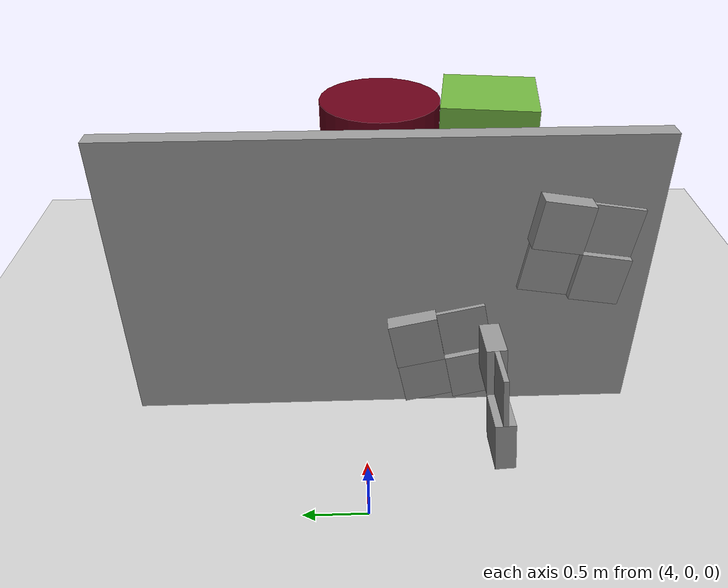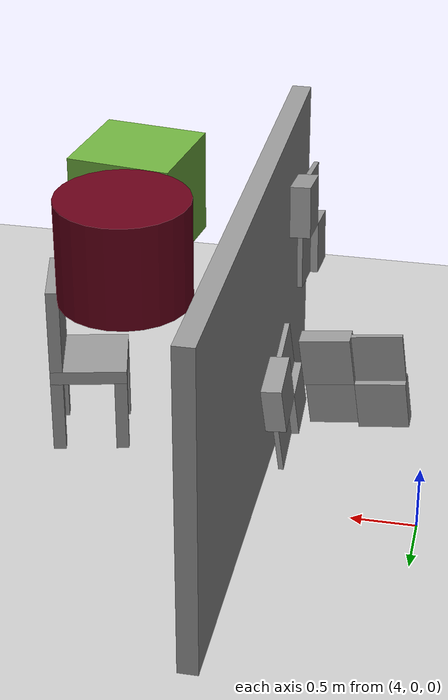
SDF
<sdf version="1.7">
 <world name="default">
  <model name="demo_clean">
   <static>1</static>
   <link name="Wall_13">
    <collision name="Wall_13_Collision">
     <geometry><box><size>4.25 0.15 2.5</size></box></geometry>
     <pose>0 0 1.25 0 -0 0</pose>
     <surface>
      <friction>
       <ode><mu>1</mu><mu2>1</mu2><fdir1>0 0 0</fdir1><slip1>0</slip1><slip2>0</slip2></ode>
       <torsional>
        <coefficient>1</coefficient>
        <patch_radius>0</patch_radius>
        <surface_radius>0</surface_radius>
        <use_patch_radius>1</use_patch_radius>
        <ode><slip>0</slip></ode>
       </torsional>
      </friction>
      <bounce><restitution_coefficient>0</restitution_coefficient><threshold>1e+06</threshold></bounce>
      <contact>
       <collide_without_contact>0</collide_without_contact>
       <collide_without_contact_bitmask>1</collide_without_contact_bitmask>
       <collide_bitmask>1</collide_bitmask>
       <ode>
        <soft_cfm>0</soft_cfm>
        <soft_erp>0.2</soft_erp>
        <kp>1e+13</kp>
        <kd>1</kd>
        <max_vel>0.01</max_vel>
        <min_depth>0</min_depth>
       </ode>
       <bullet>
        <split_impulse>1</split_impulse>
        <split_impulse_penetration_threshold>-0.01</split_impulse_penetration_threshold>
        <soft_cfm>0</soft_cfm>
        <soft_erp>0.2</soft_erp>
        <kp>1e+13</kp>
        <kd>1</kd>
       </bullet>
      </contact>
     </surface>
    </collision>
    <visual name="Wall_13_Visual">
     <geometry><box><size>4.25 0.15 2.5</size></box></geometry>
     <material>
      <script><name>Gazebo/Grey</name><uri>file://media/materials/scripts/gazebo.material</uri></script>
      <ambient>1 1 1 1</ambient>
      <shader type="pixel"><normal_map>default</normal_map></shader>
     </material>
     <pose>0 0 1.25 0 -0 0</pose>
    </visual>
    <pose>5.30351 -0.158824 0 0 0 -1.5708</pose>
   </link>
  </model>
  <model name="static_cylinder_3">
   <pose>6.23324 -0.162924 2 0 0 -0.539569</pose>
   <static>1</static>
   <allow_auto_disable>0</allow_auto_disable>
   <link name="link">
    <collision name="collision">
     <geometry><cylinder><radius>0.5</radius><length>0.8</length></cylinder></geometry>
     <max_contacts>20</max_contacts>
    </collision>
    <visual name="visual">
     <geometry><cylinder><radius>0.5</radius><length>0.8</length></cylinder></geometry>
     <material><ambient>0.407843 0 0.0941176 1</ambient><diffuse>0.407843 0 0.0941176 1</diffuse></material>
    </visual>
   </link>
  </model>
  <model name="dyn_box_2">
   <pose>6.35852 -1.09089 2 0 -0 3.00275</pose>
   <static>1</static>
   <allow_auto_disable>0</allow_auto_disable>
   <link name="link">
    <collision name="collision">
     <geometry><box><size>0.8 0.8 0.8</size></box></geometry>
     <max_contacts>20</max_contacts>
    </collision>
    <visual name="visual">
     <geometry><box><size>0.8 0.8 0.8</size></box></geometry>
     <material>
      <ambient>0.439216 0.698039 0.247059 1</ambient>
      <diffuse>0.439216 0.698039 0.247059 1</diffuse>
     </material>
    </visual>
   </link>
  </model>
  <model name="ground_plane">
   <static>1</static>
   <link name="link">
    <collision name="collision">
     <geometry><plane><normal>0 0 1</normal><size>100 100</size></plane></geometry>
     <surface>
      <contact><collide_bitmask>65535</collide_bitmask></contact>
      <friction><ode><mu>100</mu><mu2>50</mu2></ode></friction>
     </surface>
    </collision>
    <visual name="visual">
     <cast_shadows>0</cast_shadows>
     <geometry><plane><normal>0 0 1</normal><size>100 100</size></plane></geometry>
     <material>
      <script><uri>file://media/materials/scripts/gazebo.material</uri><name>Gazebo/Grey</name></script>
     </material>
    </visual>
   </link>
  </model>
  <model name="wall_slate_56">
   <static>1</static>
   <link name="link_0">
    <inertial><mass>1</mass></inertial>
    <gravity>0</gravity>
    <visual name="visual">
     <pose>0 0.2 0.2 0 -0 0</pose>
     <geometry><box><size>0.16 0.4 0.4</size></box></geometry>
     <material>
      <lighting>1</lighting>
      <script><uri>file://media/materials/scripts/gazebo.material</uri><name>Gazebo/Grey</name></script>
      <shader type="pixel"><normal_map>__default__</normal_map></shader>
      <ambient>0.3 0.3 0.3 1</ambient>
      <diffuse>0.7 0.7 0.7 1</diffuse>
      <specular>0.01 0.01 0.01 1</specular>
      <emissive>0 0 0 1</emissive>
     </material>
    </visual>
    <visual name="ModelPreview_0::link_0::visual_1">
     <pose>0 0.2 -0.2 0 -0 0</pose>
     <geometry><box><size>0.04 0.4 0.4</size></box></geometry>
     <material>
      <lighting>1</lighting>
      <script><uri>file://media/materials/scripts/gazebo.material</uri><name>Gazebo/Grey</name></script>
      <shader type="pixel"><normal_map>__default__</normal_map></shader>
      <ambient>0.3 0.3 0.3 1</ambient>
      <diffuse>0.7 0.7 0.7 1</diffuse>
      <specular>0.01 0.01 0.01 1</specular>
      <emissive>0 0 0 1</emissive>
     </material>
    </visual>
    <visual name="ModelPreview_0::link_0::visual_2">
     <pose>0 -0.2 0.2 0 -0 0</pose>
     <geometry><box><size>0.04 0.4 0.4</size></box></geometry>
     <material>
      <lighting>1</lighting>
      <script><uri>file://media/materials/scripts/gazebo.material</uri><name>Gazebo/Grey</name></script>
      <shader type="pixel"><normal_map>__default__</normal_map></shader>
      <ambient>0.3 0.3 0.3 1</ambient>
      <diffuse>0.7 0.7 0.7 1</diffuse>
      <specular>0.01 0.01 0.01 1</specular>
      <emissive>0 0 0 1</emissive>
     </material>
    </visual>
    <visual name="ModelPreview_0::link_0::visual_3">
     <pose>0 -0.2 -0.2 0 -0 0</pose>
     <geometry><box><size>0.16 0.4 0.4</size></box></geometry>
     <material>
      <lighting>1</lighting>
      <script><uri>file://media/materials/scripts/gazebo.material</uri><name>Gazebo/Grey</name></script>
      <shader type="pixel"><normal_map>__default__</normal_map></shader>
      <ambient>0.3 0.3 0.3 1</ambient>
      <diffuse>0.7 0.7 0.7 1</diffuse>
      <specular>0.01 0.01 0.01 1</specular>
      <emissive>0 0 0 1</emissive>
     </material>
    </visual>
    <collision name="collision_2">
     <pose>0 -0.2 0.2 0 -0 0</pose>
     <geometry><box><size>0.04 0.4 0.4</size></box></geometry>
     <surface>
      <friction>
       <ode><mu>1</mu><mu2>1</mu2><fdir1>0 0 0</fdir1><slip1>0</slip1><slip2>0</slip2></ode>
       <torsional>
        <coefficient>1</coefficient>
        <patch_radius>0</patch_radius>
        <surface_radius>0</surface_radius>
        <use_patch_radius>1</use_patch_radius>
        <ode><slip>0</slip></ode>
       </torsional>
      </friction>
      <bounce><restitution_coefficient>0</restitution_coefficient><threshold>1e+06</threshold></bounce>
      <contact>
       <collide_without_contact>0</collide_without_contact>
       <collide_without_contact_bitmask>1</collide_without_contact_bitmask>
       <collide_bitmask>1</collide_bitmask>
       <ode>
        <soft_cfm>0</soft_cfm>
        <soft_erp>0.2</soft_erp>
        <kp>1e+13</kp>
        <kd>1</kd>
        <max_vel>0.01</max_vel>
        <min_depth>0</min_depth>
       </ode>
       <bullet>
        <split_impulse>1</split_impulse>
        <split_impulse_penetration_threshold>-0.01</split_impulse_penetration_threshold>
        <soft_cfm>0</soft_cfm>
        <soft_erp>0.2</soft_erp>
        <kp>1e+13</kp>
        <kd>1</kd>
       </bullet>
      </contact>
     </surface>
    </collision>
    <collision name="collision_1">
     <pose>0 0.2 -0.2 0 -0 0</pose>
     <geometry><box><size>0.04 0.4 0.4</size></box></geometry>
     <surface>
      <friction>
       <ode><mu>1</mu><mu2>1</mu2><fdir1>0 0 0</fdir1><slip1>0</slip1><slip2>0</slip2></ode>
       <torsional>
        <coefficient>1</coefficient>
        <patch_radius>0</patch_radius>
        <surface_radius>0</surface_radius>
        <use_patch_radius>1</use_patch_radius>
        <ode><slip>0</slip></ode>
       </torsional>
      </friction>
      <bounce><restitution_coefficient>0</restitution_coefficient><threshold>1e+06</threshold></bounce>
      <contact>
       <collide_without_contact>0</collide_without_contact>
       <collide_without_contact_bitmask>1</collide_without_contact_bitmask>
       <collide_bitmask>1</collide_bitmask>
       <ode>
        <soft_cfm>0</soft_cfm>
        <soft_erp>0.2</soft_erp>
        <kp>1e+13</kp>
        <kd>1</kd>
        <max_vel>0.01</max_vel>
        <min_depth>0</min_depth>
       </ode>
       <bullet>
        <split_impulse>1</split_impulse>
        <split_impulse_penetration_threshold>-0.01</split_impulse_penetration_threshold>
        <soft_cfm>0</soft_cfm>
        <soft_erp>0.2</soft_erp>
        <kp>1e+13</kp>
        <kd>1</kd>
       </bullet>
      </contact>
     </surface>
    </collision>
    <collision name="collision_4">
     <pose>0 0.2 0.2 0 -0 0</pose>
     <geometry><box><size>0.16 0.4 0.4</size></box></geometry>
     <surface>
      <friction>
       <ode><mu>1</mu><mu2>1</mu2><fdir1>0 0 0</fdir1><slip1>0</slip1><slip2>0</slip2></ode>
       <torsional>
        <coefficient>1</coefficient>
        <patch_radius>0</patch_radius>
        <surface_radius>0</surface_radius>
        <use_patch_radius>1</use_patch_radius>
        <ode><slip>0</slip></ode>
       </torsional>
      </friction>
      <bounce><restitution_coefficient>0</restitution_coefficient><threshold>1e+06</threshold></bounce>
      <contact>
       <collide_without_contact>0</collide_without_contact>
       <collide_without_contact_bitmask>1</collide_without_contact_bitmask>
       <collide_bitmask>1</collide_bitmask>
       <ode>
        <soft_cfm>0</soft_cfm>
        <soft_erp>0.2</soft_erp>
        <kp>1e+13</kp>
        <kd>1</kd>
        <max_vel>0.01</max_vel>
        <min_depth>0</min_depth>
       </ode>
       <bullet>
        <split_impulse>1</split_impulse>
        <split_impulse_penetration_threshold>-0.01</split_impulse_penetration_threshold>
        <soft_cfm>0</soft_cfm>
        <soft_erp>0.2</soft_erp>
        <kp>1e+13</kp>
        <kd>1</kd>
       </bullet>
      </contact>
     </surface>
    </collision>
    <collision name="collision_3">
     <pose>0 -0.2 -0.2 0 -0 0</pose>
     <geometry><box><size>0.16 0.4 0.4</size></box></geometry>
     <surface>
      <friction>
       <ode><mu>1</mu><mu2>1</mu2><fdir1>0 0 0</fdir1><slip1>0</slip1><slip2>0</slip2></ode>
       <torsional>
        <coefficient>1</coefficient>
        <patch_radius>0</patch_radius>
        <surface_radius>0</surface_radius>
        <use_patch_radius>1</use_patch_radius>
        <ode><slip>0</slip></ode>
       </torsional>
      </friction>
      <bounce><restitution_coefficient>0</restitution_coefficient><threshold>1e+06</threshold></bounce>
      <contact>
       <collide_without_contact>0</collide_without_contact>
       <collide_without_contact_bitmask>1</collide_without_contact_bitmask>
       <collide_bitmask>1</collide_bitmask>
       <ode>
        <soft_cfm>0</soft_cfm>
        <soft_erp>0.2</soft_erp>
        <kp>1e+13</kp>
        <kd>1</kd>
        <max_vel>0.01</max_vel>
        <min_depth>0</min_depth>
       </ode>
       <bullet>
        <split_impulse>1</split_impulse>
        <split_impulse_penetration_threshold>-0.01</split_impulse_penetration_threshold>
        <soft_cfm>0</soft_cfm>
        <soft_erp>0.2</soft_erp>
        <kp>1e+13</kp>
        <kd>1</kd>
       </bullet>
      </contact>
     </surface>
    </collision>
   </link>
   <pose>4.62187 -1.02191 0.6 -0.12 -0.06 -1.5659</pose>
  </model>
  <model name="wall_slate_101">
   <static>1</static>
   <link name="link_0">
    <inertial><mass>1</mass></inertial>
    <gravity>0</gravity>
    <visual name="visual">
     <pose>0 0.2 0.2 0 -0 0</pose>
     <geometry><box><size>0.16 0.4 0.4</size></box></geometry>
     <material>
      <lighting>1</lighting>
      <script><uri>file://media/materials/scripts/gazebo.material</uri><name>Gazebo/Grey</name></script>
      <shader type="pixel"><normal_map>__default__</normal_map></shader>
      <ambient>0.3 0.3 0.3 1</ambient>
      <diffuse>0.7 0.7 0.7 1</diffuse>
      <specular>0.01 0.01 0.01 1</specular>
      <emissive>0 0 0 1</emissive>
     </material>
    </visual>
    <visual name="ModelPreview_0::link_0::visual_1">
     <pose>0 0.2 -0.2 0 -0 0</pose>
     <geometry><box><size>0.04 0.4 0.4</size></box></geometry>
     <material>
      <lighting>1</lighting>
      <script><uri>file://media/materials/scripts/gazebo.material</uri><name>Gazebo/Grey</name></script>
      <shader type="pixel"><normal_map>__default__</normal_map></shader>
      <ambient>0.3 0.3 0.3 1</ambient>
      <diffuse>0.7 0.7 0.7 1</diffuse>
      <specular>0.01 0.01 0.01 1</specular>
      <emissive>0 0 0 1</emissive>
     </material>
    </visual>
    <visual name="ModelPreview_0::link_0::visual_2">
     <pose>0 -0.2 0.2 0 -0 0</pose>
     <geometry><box><size>0.04 0.4 0.4</size></box></geometry>
     <material>
      <lighting>1</lighting>
      <script><uri>file://media/materials/scripts/gazebo.material</uri><name>Gazebo/Grey</name></script>
      <shader type="pixel"><normal_map>__default__</normal_map></shader>
      <ambient>0.3 0.3 0.3 1</ambient>
      <diffuse>0.7 0.7 0.7 1</diffuse>
      <specular>0.01 0.01 0.01 1</specular>
      <emissive>0 0 0 1</emissive>
     </material>
    </visual>
    <visual name="ModelPreview_0::link_0::visual_3">
     <pose>0 -0.2 -0.2 0 -0 0</pose>
     <geometry><box><size>0.16 0.4 0.4</size></box></geometry>
     <material>
      <lighting>1</lighting>
      <script><uri>file://media/materials/scripts/gazebo.material</uri><name>Gazebo/Grey</name></script>
      <shader type="pixel"><normal_map>__default__</normal_map></shader>
      <ambient>0.3 0.3 0.3 1</ambient>
      <diffuse>0.7 0.7 0.7 1</diffuse>
      <specular>0.01 0.01 0.01 1</specular>
      <emissive>0 0 0 1</emissive>
     </material>
    </visual>
    <collision name="collision_2">
     <pose>0 -0.2 0.2 0 -0 0</pose>
     <geometry><box><size>0.04 0.4 0.4</size></box></geometry>
     <surface>
      <friction>
       <ode><mu>1</mu><mu2>1</mu2><fdir1>0 0 0</fdir1><slip1>0</slip1><slip2>0</slip2></ode>
       <torsional>
        <coefficient>1</coefficient>
        <patch_radius>0</patch_radius>
        <surface_radius>0</surface_radius>
        <use_patch_radius>1</use_patch_radius>
        <ode><slip>0</slip></ode>
       </torsional>
      </friction>
      <bounce><restitution_coefficient>0</restitution_coefficient><threshold>1e+06</threshold></bounce>
      <contact>
       <collide_without_contact>0</collide_without_contact>
       <collide_without_contact_bitmask>1</collide_without_contact_bitmask>
       <collide_bitmask>1</collide_bitmask>
       <ode>
        <soft_cfm>0</soft_cfm>
        <soft_erp>0.2</soft_erp>
        <kp>1e+13</kp>
        <kd>1</kd>
        <max_vel>0.01</max_vel>
        <min_depth>0</min_depth>
       </ode>
       <bullet>
        <split_impulse>1</split_impulse>
        <split_impulse_penetration_threshold>-0.01</split_impulse_penetration_threshold>
        <soft_cfm>0</soft_cfm>
        <soft_erp>0.2</soft_erp>
        <kp>1e+13</kp>
        <kd>1</kd>
       </bullet>
      </contact>
     </surface>
    </collision>
    <collision name="collision_1">
     <pose>0 0.2 -0.2 0 -0 0</pose>
     <geometry><box><size>0.04 0.4 0.4</size></box></geometry>
     <surface>
      <friction>
       <ode><mu>1</mu><mu2>1</mu2><fdir1>0 0 0</fdir1><slip1>0</slip1><slip2>0</slip2></ode>
       <torsional>
        <coefficient>1</coefficient>
        <patch_radius>0</patch_radius>
        <surface_radius>0</surface_radius>
        <use_patch_radius>1</use_patch_radius>
        <ode><slip>0</slip></ode>
       </torsional>
      </friction>
      <bounce><restitution_coefficient>0</restitution_coefficient><threshold>1e+06</threshold></bounce>
      <contact>
       <collide_without_contact>0</collide_without_contact>
       <collide_without_contact_bitmask>1</collide_without_contact_bitmask>
       <collide_bitmask>1</collide_bitmask>
       <ode>
        <soft_cfm>0</soft_cfm>
        <soft_erp>0.2</soft_erp>
        <kp>1e+13</kp>
        <kd>1</kd>
        <max_vel>0.01</max_vel>
        <min_depth>0</min_depth>
       </ode>
       <bullet>
        <split_impulse>1</split_impulse>
        <split_impulse_penetration_threshold>-0.01</split_impulse_penetration_threshold>
        <soft_cfm>0</soft_cfm>
        <soft_erp>0.2</soft_erp>
        <kp>1e+13</kp>
        <kd>1</kd>
       </bullet>
      </contact>
     </surface>
    </collision>
    <collision name="collision_4">
     <pose>0 0.2 0.2 0 -0 0</pose>
     <geometry><box><size>0.16 0.4 0.4</size></box></geometry>
     <surface>
      <friction>
       <ode><mu>1</mu><mu2>1</mu2><fdir1>0 0 0</fdir1><slip1>0</slip1><slip2>0</slip2></ode>
       <torsional>
        <coefficient>1</coefficient>
        <patch_radius>0</patch_radius>
        <surface_radius>0</surface_radius>
        <use_patch_radius>1</use_patch_radius>
        <ode><slip>0</slip></ode>
       </torsional>
      </friction>
      <bounce><restitution_coefficient>0</restitution_coefficient><threshold>1e+06</threshold></bounce>
      <contact>
       <collide_without_contact>0</collide_without_contact>
       <collide_without_contact_bitmask>1</collide_without_contact_bitmask>
       <collide_bitmask>1</collide_bitmask>
       <ode>
        <soft_cfm>0</soft_cfm>
        <soft_erp>0.2</soft_erp>
        <kp>1e+13</kp>
        <kd>1</kd>
        <max_vel>0.01</max_vel>
        <min_depth>0</min_depth>
       </ode>
       <bullet>
        <split_impulse>1</split_impulse>
        <split_impulse_penetration_threshold>-0.01</split_impulse_penetration_threshold>
        <soft_cfm>0</soft_cfm>
        <soft_erp>0.2</soft_erp>
        <kp>1e+13</kp>
        <kd>1</kd>
       </bullet>
      </contact>
     </surface>
    </collision>
    <collision name="collision_3">
     <pose>0 -0.2 -0.2 0 -0 0</pose>
     <geometry><box><size>0.16 0.4 0.4</size></box></geometry>
     <surface>
      <friction>
       <ode><mu>1</mu><mu2>1</mu2><fdir1>0 0 0</fdir1><slip1>0</slip1><slip2>0</slip2></ode>
       <torsional>
        <coefficient>1</coefficient>
        <patch_radius>0</patch_radius>
        <surface_radius>0</surface_radius>
        <use_patch_radius>1</use_patch_radius>
        <ode><slip>0</slip></ode>
       </torsional>
      </friction>
      <bounce><restitution_coefficient>0</restitution_coefficient><threshold>1e+06</threshold></bounce>
      <contact>
       <collide_without_contact>0</collide_without_contact>
       <collide_without_contact_bitmask>1</collide_without_contact_bitmask>
       <collide_bitmask>1</collide_bitmask>
       <ode>
        <soft_cfm>0</soft_cfm>
        <soft_erp>0.2</soft_erp>
        <kp>1e+13</kp>
        <kd>1</kd>
        <max_vel>0.01</max_vel>
        <min_depth>0</min_depth>
       </ode>
       <bullet>
        <split_impulse>1</split_impulse>
        <split_impulse_penetration_threshold>-0.01</split_impulse_penetration_threshold>
        <soft_cfm>0</soft_cfm>
        <soft_erp>0.2</soft_erp>
        <kp>1e+13</kp>
        <kd>1</kd>
       </bullet>
      </contact>
     </surface>
    </collision>
   </link>
   <pose>5.47851 -0.658823 0.6 0.14 -0.04 0.0049</pose>
  </model>
  <model name="wall_slate_105">
   <static>1</static>
   <link name="link_0">
    <inertial><mass>1</mass></inertial>
    <gravity>0</gravity>
    <visual name="visual">
     <pose>0 0.2 0.2 0 -0 0</pose>
     <geometry><box><size>0.16 0.4 0.4</size></box></geometry>
     <material>
      <lighting>1</lighting>
      <script><uri>file://media/materials/scripts/gazebo.material</uri><name>Gazebo/Grey</name></script>
      <shader type="pixel"><normal_map>__default__</normal_map></shader>
      <ambient>0.3 0.3 0.3 1</ambient>
      <diffuse>0.7 0.7 0.7 1</diffuse>
      <specular>0.01 0.01 0.01 1</specular>
      <emissive>0 0 0 1</emissive>
     </material>
    </visual>
    <visual name="ModelPreview_0::link_0::visual_1">
     <pose>0 0.2 -0.2 0 -0 0</pose>
     <geometry><box><size>0.04 0.4 0.4</size></box></geometry>
     <material>
      <lighting>1</lighting>
      <script><uri>file://media/materials/scripts/gazebo.material</uri><name>Gazebo/Grey</name></script>
      <shader type="pixel"><normal_map>__default__</normal_map></shader>
      <ambient>0.3 0.3 0.3 1</ambient>
      <diffuse>0.7 0.7 0.7 1</diffuse>
      <specular>0.01 0.01 0.01 1</specular>
      <emissive>0 0 0 1</emissive>
     </material>
    </visual>
    <visual name="ModelPreview_0::link_0::visual_2">
     <pose>0 -0.2 0.2 0 -0 0</pose>
     <geometry><box><size>0.04 0.4 0.4</size></box></geometry>
     <material>
      <lighting>1</lighting>
      <script><uri>file://media/materials/scripts/gazebo.material</uri><name>Gazebo/Grey</name></script>
      <shader type="pixel"><normal_map>__default__</normal_map></shader>
      <ambient>0.3 0.3 0.3 1</ambient>
      <diffuse>0.7 0.7 0.7 1</diffuse>
      <specular>0.01 0.01 0.01 1</specular>
      <emissive>0 0 0 1</emissive>
     </material>
    </visual>
    <visual name="ModelPreview_0::link_0::visual_3">
     <pose>0 -0.2 -0.2 0 -0 0</pose>
     <geometry><box><size>0.16 0.4 0.4</size></box></geometry>
     <material>
      <lighting>1</lighting>
      <script><uri>file://media/materials/scripts/gazebo.material</uri><name>Gazebo/Grey</name></script>
      <shader type="pixel"><normal_map>__default__</normal_map></shader>
      <ambient>0.3 0.3 0.3 1</ambient>
      <diffuse>0.7 0.7 0.7 1</diffuse>
      <specular>0.01 0.01 0.01 1</specular>
      <emissive>0 0 0 1</emissive>
     </material>
    </visual>
    <collision name="collision_2">
     <pose>0 -0.2 0.2 0 -0 0</pose>
     <geometry><box><size>0.04 0.4 0.4</size></box></geometry>
     <surface>
      <friction>
       <ode><mu>1</mu><mu2>1</mu2><fdir1>0 0 0</fdir1><slip1>0</slip1><slip2>0</slip2></ode>
       <torsional>
        <coefficient>1</coefficient>
        <patch_radius>0</patch_radius>
        <surface_radius>0</surface_radius>
        <use_patch_radius>1</use_patch_radius>
        <ode><slip>0</slip></ode>
       </torsional>
      </friction>
      <bounce><restitution_coefficient>0</restitution_coefficient><threshold>1e+06</threshold></bounce>
      <contact>
       <collide_without_contact>0</collide_without_contact>
       <collide_without_contact_bitmask>1</collide_without_contact_bitmask>
       <collide_bitmask>1</collide_bitmask>
       <ode>
        <soft_cfm>0</soft_cfm>
        <soft_erp>0.2</soft_erp>
        <kp>1e+13</kp>
        <kd>1</kd>
        <max_vel>0.01</max_vel>
        <min_depth>0</min_depth>
       </ode>
       <bullet>
        <split_impulse>1</split_impulse>
        <split_impulse_penetration_threshold>-0.01</split_impulse_penetration_threshold>
        <soft_cfm>0</soft_cfm>
        <soft_erp>0.2</soft_erp>
        <kp>1e+13</kp>
        <kd>1</kd>
       </bullet>
      </contact>
     </surface>
    </collision>
    <collision name="collision_1">
     <pose>0 0.2 -0.2 0 -0 0</pose>
     <geometry><box><size>0.04 0.4 0.4</size></box></geometry>
     <surface>
      <friction>
       <ode><mu>1</mu><mu2>1</mu2><fdir1>0 0 0</fdir1><slip1>0</slip1><slip2>0</slip2></ode>
       <torsional>
        <coefficient>1</coefficient>
        <patch_radius>0</patch_radius>
        <surface_radius>0</surface_radius>
        <use_patch_radius>1</use_patch_radius>
        <ode><slip>0</slip></ode>
       </torsional>
      </friction>
      <bounce><restitution_coefficient>0</restitution_coefficient><threshold>1e+06</threshold></bounce>
      <contact>
       <collide_without_contact>0</collide_without_contact>
       <collide_without_contact_bitmask>1</collide_without_contact_bitmask>
       <collide_bitmask>1</collide_bitmask>
       <ode>
        <soft_cfm>0</soft_cfm>
        <soft_erp>0.2</soft_erp>
        <kp>1e+13</kp>
        <kd>1</kd>
        <max_vel>0.01</max_vel>
        <min_depth>0</min_depth>
       </ode>
       <bullet>
        <split_impulse>1</split_impulse>
        <split_impulse_penetration_threshold>-0.01</split_impulse_penetration_threshold>
        <soft_cfm>0</soft_cfm>
        <soft_erp>0.2</soft_erp>
        <kp>1e+13</kp>
        <kd>1</kd>
       </bullet>
      </contact>
     </surface>
    </collision>
    <collision name="collision_4">
     <pose>0 0.2 0.2 0 -0 0</pose>
     <geometry><box><size>0.16 0.4 0.4</size></box></geometry>
     <surface>
      <friction>
       <ode><mu>1</mu><mu2>1</mu2><fdir1>0 0 0</fdir1><slip1>0</slip1><slip2>0</slip2></ode>
       <torsional>
        <coefficient>1</coefficient>
        <patch_radius>0</patch_radius>
        <surface_radius>0</surface_radius>
        <use_patch_radius>1</use_patch_radius>
        <ode><slip>0</slip></ode>
       </torsional>
      </friction>
      <bounce><restitution_coefficient>0</restitution_coefficient><threshold>1e+06</threshold></bounce>
      <contact>
       <collide_without_contact>0</collide_without_contact>
       <collide_without_contact_bitmask>1</collide_without_contact_bitmask>
       <collide_bitmask>1</collide_bitmask>
       <ode>
        <soft_cfm>0</soft_cfm>
        <soft_erp>0.2</soft_erp>
        <kp>1e+13</kp>
        <kd>1</kd>
        <max_vel>0.01</max_vel>
        <min_depth>0</min_depth>
       </ode>
       <bullet>
        <split_impulse>1</split_impulse>
        <split_impulse_penetration_threshold>-0.01</split_impulse_penetration_threshold>
        <soft_cfm>0</soft_cfm>
        <soft_erp>0.2</soft_erp>
        <kp>1e+13</kp>
        <kd>1</kd>
       </bullet>
      </contact>
     </surface>
    </collision>
    <collision name="collision_3">
     <pose>0 -0.2 -0.2 0 -0 0</pose>
     <geometry><box><size>0.16 0.4 0.4</size></box></geometry>
     <surface>
      <friction>
       <ode><mu>1</mu><mu2>1</mu2><fdir1>0 0 0</fdir1><slip1>0</slip1><slip2>0</slip2></ode>
       <torsional>
        <coefficient>1</coefficient>
        <patch_radius>0</patch_radius>
        <surface_radius>0</surface_radius>
        <use_patch_radius>1</use_patch_radius>
        <ode><slip>0</slip></ode>
       </torsional>
      </friction>
      <bounce><restitution_coefficient>0</restitution_coefficient><threshold>1e+06</threshold></bounce>
      <contact>
       <collide_without_contact>0</collide_without_contact>
       <collide_without_contact_bitmask>1</collide_without_contact_bitmask>
       <collide_bitmask>1</collide_bitmask>
       <ode>
        <soft_cfm>0</soft_cfm>
        <soft_erp>0.2</soft_erp>
        <kp>1e+13</kp>
        <kd>1</kd>
        <max_vel>0.01</max_vel>
        <min_depth>0</min_depth>
       </ode>
       <bullet>
        <split_impulse>1</split_impulse>
        <split_impulse_penetration_threshold>-0.01</split_impulse_penetration_threshold>
        <soft_cfm>0</soft_cfm>
        <soft_erp>0.2</soft_erp>
        <kp>1e+13</kp>
        <kd>1</kd>
       </bullet>
      </contact>
     </surface>
    </collision>
   </link>
   <pose>5.12851 -0.658825 0.6 -0.2 0.08 0.0049</pose>
  </model>
  <model name="wall_slate_109">
   <static>1</static>
   <link name="link_0">
    <inertial><mass>1</mass></inertial>
    <gravity>0</gravity>
    <visual name="visual">
     <pose>0 0.2 0.2 0 -0 0</pose>
     <geometry><box><size>0.16 0.4 0.4</size></box></geometry>
     <material>
      <lighting>1</lighting>
      <script><uri>file://media/materials/scripts/gazebo.material</uri><name>Gazebo/Grey</name></script>
      <shader type="pixel"><normal_map>__default__</normal_map></shader>
      <ambient>0.3 0.3 0.3 1</ambient>
      <diffuse>0.7 0.7 0.7 1</diffuse>
      <specular>0.01 0.01 0.01 1</specular>
      <emissive>0 0 0 1</emissive>
     </material>
    </visual>
    <visual name="ModelPreview_0::link_0::visual_1">
     <pose>0 0.2 -0.2 0 -0 0</pose>
     <geometry><box><size>0.04 0.4 0.4</size></box></geometry>
     <material>
      <lighting>1</lighting>
      <script><uri>file://media/materials/scripts/gazebo.material</uri><name>Gazebo/Grey</name></script>
      <shader type="pixel"><normal_map>__default__</normal_map></shader>
      <ambient>0.3 0.3 0.3 1</ambient>
      <diffuse>0.7 0.7 0.7 1</diffuse>
      <specular>0.01 0.01 0.01 1</specular>
      <emissive>0 0 0 1</emissive>
     </material>
    </visual>
    <visual name="ModelPreview_0::link_0::visual_2">
     <pose>0 -0.2 0.2 0 -0 0</pose>
     <geometry><box><size>0.04 0.4 0.4</size></box></geometry>
     <material>
      <lighting>1</lighting>
      <script><uri>file://media/materials/scripts/gazebo.material</uri><name>Gazebo/Grey</name></script>
      <shader type="pixel"><normal_map>__default__</normal_map></shader>
      <ambient>0.3 0.3 0.3 1</ambient>
      <diffuse>0.7 0.7 0.7 1</diffuse>
      <specular>0.01 0.01 0.01 1</specular>
      <emissive>0 0 0 1</emissive>
     </material>
    </visual>
    <visual name="ModelPreview_0::link_0::visual_3">
     <pose>0 -0.2 -0.2 0 -0 0</pose>
     <geometry><box><size>0.16 0.4 0.4</size></box></geometry>
     <material>
      <lighting>1</lighting>
      <script><uri>file://media/materials/scripts/gazebo.material</uri><name>Gazebo/Grey</name></script>
      <shader type="pixel"><normal_map>__default__</normal_map></shader>
      <ambient>0.3 0.3 0.3 1</ambient>
      <diffuse>0.7 0.7 0.7 1</diffuse>
      <specular>0.01 0.01 0.01 1</specular>
      <emissive>0 0 0 1</emissive>
     </material>
    </visual>
    <collision name="collision_2">
     <pose>0 -0.2 0.2 0 -0 0</pose>
     <geometry><box><size>0.04 0.4 0.4</size></box></geometry>
     <surface>
      <friction>
       <ode><mu>1</mu><mu2>1</mu2><fdir1>0 0 0</fdir1><slip1>0</slip1><slip2>0</slip2></ode>
       <torsional>
        <coefficient>1</coefficient>
        <patch_radius>0</patch_radius>
        <surface_radius>0</surface_radius>
        <use_patch_radius>1</use_patch_radius>
        <ode><slip>0</slip></ode>
       </torsional>
      </friction>
      <bounce><restitution_coefficient>0</restitution_coefficient><threshold>1e+06</threshold></bounce>
      <contact>
       <collide_without_contact>0</collide_without_contact>
       <collide_without_contact_bitmask>1</collide_without_contact_bitmask>
       <collide_bitmask>1</collide_bitmask>
       <ode>
        <soft_cfm>0</soft_cfm>
        <soft_erp>0.2</soft_erp>
        <kp>1e+13</kp>
        <kd>1</kd>
        <max_vel>0.01</max_vel>
        <min_depth>0</min_depth>
       </ode>
       <bullet>
        <split_impulse>1</split_impulse>
        <split_impulse_penetration_threshold>-0.01</split_impulse_penetration_threshold>
        <soft_cfm>0</soft_cfm>
        <soft_erp>0.2</soft_erp>
        <kp>1e+13</kp>
        <kd>1</kd>
       </bullet>
      </contact>
     </surface>
    </collision>
    <collision name="collision_1">
     <pose>0 0.2 -0.2 0 -0 0</pose>
     <geometry><box><size>0.04 0.4 0.4</size></box></geometry>
     <surface>
      <friction>
       <ode><mu>1</mu><mu2>1</mu2><fdir1>0 0 0</fdir1><slip1>0</slip1><slip2>0</slip2></ode>
       <torsional>
        <coefficient>1</coefficient>
        <patch_radius>0</patch_radius>
        <surface_radius>0</surface_radius>
        <use_patch_radius>1</use_patch_radius>
        <ode><slip>0</slip></ode>
       </torsional>
      </friction>
      <bounce><restitution_coefficient>0</restitution_coefficient><threshold>1e+06</threshold></bounce>
      <contact>
       <collide_without_contact>0</collide_without_contact>
       <collide_without_contact_bitmask>1</collide_without_contact_bitmask>
       <collide_bitmask>1</collide_bitmask>
       <ode>
        <soft_cfm>0</soft_cfm>
        <soft_erp>0.2</soft_erp>
        <kp>1e+13</kp>
        <kd>1</kd>
        <max_vel>0.01</max_vel>
        <min_depth>0</min_depth>
       </ode>
       <bullet>
        <split_impulse>1</split_impulse>
        <split_impulse_penetration_threshold>-0.01</split_impulse_penetration_threshold>
        <soft_cfm>0</soft_cfm>
        <soft_erp>0.2</soft_erp>
        <kp>1e+13</kp>
        <kd>1</kd>
       </bullet>
      </contact>
     </surface>
    </collision>
    <collision name="collision_4">
     <pose>0 0.2 0.2 0 -0 0</pose>
     <geometry><box><size>0.16 0.4 0.4</size></box></geometry>
     <surface>
      <friction>
       <ode><mu>1</mu><mu2>1</mu2><fdir1>0 0 0</fdir1><slip1>0</slip1><slip2>0</slip2></ode>
       <torsional>
        <coefficient>1</coefficient>
        <patch_radius>0</patch_radius>
        <surface_radius>0</surface_radius>
        <use_patch_radius>1</use_patch_radius>
        <ode><slip>0</slip></ode>
       </torsional>
      </friction>
      <bounce><restitution_coefficient>0</restitution_coefficient><threshold>1e+06</threshold></bounce>
      <contact>
       <collide_without_contact>0</collide_without_contact>
       <collide_without_contact_bitmask>1</collide_without_contact_bitmask>
       <collide_bitmask>1</collide_bitmask>
       <ode>
        <soft_cfm>0</soft_cfm>
        <soft_erp>0.2</soft_erp>
        <kp>1e+13</kp>
        <kd>1</kd>
        <max_vel>0.01</max_vel>
        <min_depth>0</min_depth>
       </ode>
       <bullet>
        <split_impulse>1</split_impulse>
        <split_impulse_penetration_threshold>-0.01</split_impulse_penetration_threshold>
        <soft_cfm>0</soft_cfm>
        <soft_erp>0.2</soft_erp>
        <kp>1e+13</kp>
        <kd>1</kd>
       </bullet>
      </contact>
     </surface>
    </collision>
    <collision name="collision_3">
     <pose>0 -0.2 -0.2 0 -0 0</pose>
     <geometry><box><size>0.16 0.4 0.4</size></box></geometry>
     <surface>
      <friction>
       <ode><mu>1</mu><mu2>1</mu2><fdir1>0 0 0</fdir1><slip1>0</slip1><slip2>0</slip2></ode>
       <torsional>
        <coefficient>1</coefficient>
        <patch_radius>0</patch_radius>
        <surface_radius>0</surface_radius>
        <use_patch_radius>1</use_patch_radius>
        <ode><slip>0</slip></ode>
       </torsional>
      </friction>
      <bounce><restitution_coefficient>0</restitution_coefficient><threshold>1e+06</threshold></bounce>
      <contact>
       <collide_without_contact>0</collide_without_contact>
       <collide_without_contact_bitmask>1</collide_without_contact_bitmask>
       <collide_bitmask>1</collide_bitmask>
       <ode>
        <soft_cfm>0</soft_cfm>
        <soft_erp>0.2</soft_erp>
        <kp>1e+13</kp>
        <kd>1</kd>
        <max_vel>0.01</max_vel>
        <min_depth>0</min_depth>
       </ode>
       <bullet>
        <split_impulse>1</split_impulse>
        <split_impulse_penetration_threshold>-0.01</split_impulse_penetration_threshold>
        <soft_cfm>0</soft_cfm>
        <soft_erp>0.2</soft_erp>
        <kp>1e+13</kp>
        <kd>1</kd>
       </bullet>
      </contact>
     </surface>
    </collision>
   </link>
   <pose>5.12852 -1.65882 1.6 0.16 0.04 0.0049</pose>
  </model>
  <model name="chair_1">
   <link name="link_0_clone">
    <inertial>
     <mass>1</mass>
     <inertia><ixx>1</ixx><ixy>0</ixy><ixz>0</ixz><iyy>1</iyy><iyz>0</iyz><izz>1</izz></inertia>
    </inertial>
    <pose>-0.041667 -0 0.165833 0 -0 0</pose>
    <gravity>0</gravity>
    <visual name="visual">
     <geometry><box><size>0.6 0.6 0.11</size></box></geometry>
     <material>
      <lighting>1</lighting>
      <script><uri>file://media/materials/scripts/gazebo.material</uri><name>Gazebo/Grey</name></script>
      <shader type="pixel"><normal_map>__default__</normal_map></shader>
      <ambient>0.3 0.3 0.3 1</ambient>
      <diffuse>0.7 0.7 0.7 1</diffuse>
      <specular>0.01 0.01 0.01 1</specular>
      <emissive>0 0 0 1</emissive>
     </material>
    </visual>
    <collision name="collision">
     <geometry><box><size>0.6 0.6 0.1</size></box></geometry>
     <surface>
      <friction>
       <ode><mu>1</mu><mu2>1</mu2><fdir1>0 0 0</fdir1><slip1>0</slip1><slip2>0</slip2></ode>
       <torsional>
        <coefficient>1</coefficient>
        <patch_radius>0</patch_radius>
        <surface_radius>0</surface_radius>
        <use_patch_radius>1</use_patch_radius>
        <ode><slip>0</slip></ode>
       </torsional>
      </friction>
      <bounce><restitution_coefficient>0</restitution_coefficient><threshold>1e+06</threshold></bounce>
      <contact>
       <collide_without_contact>0</collide_without_contact>
       <collide_without_contact_bitmask>1</collide_without_contact_bitmask>
       <collide_bitmask>1</collide_bitmask>
       <ode>
        <soft_cfm>0</soft_cfm>
        <soft_erp>0.2</soft_erp>
        <kp>1e+13</kp>
        <kd>1</kd>
        <max_vel>0.01</max_vel>
        <min_depth>0</min_depth>
       </ode>
       <bullet>
        <split_impulse>1</split_impulse>
        <split_impulse_penetration_threshold>-0.01</split_impulse_penetration_threshold>
        <soft_cfm>0</soft_cfm>
        <soft_erp>0.2</soft_erp>
        <kp>1e+13</kp>
        <kd>1</kd>
       </bullet>
      </contact>
     </surface>
    </collision>
   </link>
   <link name="link_1_clone">
    <inertial>
     <mass>1</mass>
     <inertia>
      <ixx>0.166667</ixx>
      <ixy>0</ixy>
      <ixz>0</ixz>
      <iyy>0.166667</iyy>
      <iyz>0</iyz>
      <izz>0.166667</izz>
     </inertia>
    </inertial>
    <pose>-0.291667 0.25 -0.184167 0 -0 0</pose>
    <visual name="visual">
     <geometry><box><size>0.1 0.1 0.6</size></box></geometry>
     <material>
      <lighting>1</lighting>
      <script><uri>file://media/materials/scripts/gazebo.material</uri><name>Gazebo/Grey</name></script>
      <shader type="pixel"><normal_map>__default__</normal_map></shader>
      <ambient>0.3 0.3 0.3 1</ambient>
      <diffuse>0.7 0.7 0.7 1</diffuse>
      <specular>0.01 0.01 0.01 1</specular>
      <emissive>0 0 0 1</emissive>
     </material>
    </visual>
    <collision name="collision">
     <geometry><box><size>0.1 0.1 0.6</size></box></geometry>
     <surface>
      <friction>
       <ode><mu>1</mu><mu2>1</mu2><fdir1>0 0 0</fdir1><slip1>0</slip1><slip2>0</slip2></ode>
       <torsional>
        <coefficient>1</coefficient>
        <patch_radius>0</patch_radius>
        <surface_radius>0</surface_radius>
        <use_patch_radius>1</use_patch_radius>
        <ode><slip>0</slip></ode>
       </torsional>
      </friction>
      <bounce><restitution_coefficient>0</restitution_coefficient><threshold>1e+06</threshold></bounce>
      <contact>
       <collide_without_contact>0</collide_without_contact>
       <collide_without_contact_bitmask>1</collide_without_contact_bitmask>
       <collide_bitmask>1</collide_bitmask>
       <ode>
        <soft_cfm>0</soft_cfm>
        <soft_erp>0.2</soft_erp>
        <kp>1e+13</kp>
        <kd>1</kd>
        <max_vel>0.01</max_vel>
        <min_depth>0</min_depth>
       </ode>
       <bullet>
        <split_impulse>1</split_impulse>
        <split_impulse_penetration_threshold>-0.01</split_impulse_penetration_threshold>
        <soft_cfm>0</soft_cfm>
        <soft_erp>0.2</soft_erp>
        <kp>1e+13</kp>
        <kd>1</kd>
       </bullet>
      </contact>
     </surface>
    </collision>
   </link>
   <link name="link_1_clone_0">
    <inertial>
     <mass>1</mass>
     <inertia>
      <ixx>0.166667</ixx>
      <ixy>0</ixy>
      <ixz>0</ixz>
      <iyy>0.166667</iyy>
      <iyz>0</iyz>
      <izz>0.166667</izz>
     </inertia>
    </inertial>
    <pose>0.208333 0.25 -0.184167 0 -0 0</pose>
    <visual name="visual">
     <geometry><box><size>0.1 0.1 0.6</size></box></geometry>
     <material>
      <lighting>1</lighting>
      <script><uri>file://media/materials/scripts/gazebo.material</uri><name>Gazebo/Grey</name></script>
      <shader type="pixel"><normal_map>__default__</normal_map></shader>
      <ambient>0.3 0.3 0.3 1</ambient>
      <diffuse>0.7 0.7 0.7 1</diffuse>
      <specular>0.01 0.01 0.01 1</specular>
      <emissive>0 0 0 1</emissive>
     </material>
    </visual>
    <collision name="collision">
     <geometry><box><size>0.1 0.1 0.6</size></box></geometry>
     <surface>
      <friction>
       <ode><mu>1</mu><mu2>1</mu2><fdir1>0 0 0</fdir1><slip1>0</slip1><slip2>0</slip2></ode>
       <torsional>
        <coefficient>1</coefficient>
        <patch_radius>0</patch_radius>
        <surface_radius>0</surface_radius>
        <use_patch_radius>1</use_patch_radius>
        <ode><slip>0</slip></ode>
       </torsional>
      </friction>
      <bounce><restitution_coefficient>0</restitution_coefficient><threshold>1e+06</threshold></bounce>
      <contact>
       <collide_without_contact>0</collide_without_contact>
       <collide_without_contact_bitmask>1</collide_without_contact_bitmask>
       <collide_bitmask>1</collide_bitmask>
       <ode>
        <soft_cfm>0</soft_cfm>
        <soft_erp>0.2</soft_erp>
        <kp>1e+13</kp>
        <kd>1</kd>
        <max_vel>0.01</max_vel>
        <min_depth>0</min_depth>
       </ode>
       <bullet>
        <split_impulse>1</split_impulse>
        <split_impulse_penetration_threshold>-0.01</split_impulse_penetration_threshold>
        <soft_cfm>0</soft_cfm>
        <soft_erp>0.2</soft_erp>
        <kp>1e+13</kp>
        <kd>1</kd>
       </bullet>
      </contact>
     </surface>
    </collision>
   </link>
   <link name="link_1_clone_1">
    <inertial>
     <mass>1</mass>
     <inertia>
      <ixx>0.166667</ixx>
      <ixy>0</ixy>
      <ixz>0</ixz>
      <iyy>0.166667</iyy>
      <iyz>0</iyz>
      <izz>0.166667</izz>
     </inertia>
    </inertial>
    <pose>0.208333 -0.25 -0.184167 0 -0 0</pose>
    <visual name="visual">
     <geometry><box><size>0.1 0.1 0.6</size></box></geometry>
     <material>
      <lighting>1</lighting>
      <script><uri>file://media/materials/scripts/gazebo.material</uri><name>Gazebo/Grey</name></script>
      <shader type="pixel"><normal_map>__default__</normal_map></shader>
      <ambient>0.3 0.3 0.3 1</ambient>
      <diffuse>0.7 0.7 0.7 1</diffuse>
      <specular>0.01 0.01 0.01 1</specular>
      <emissive>0 0 0 1</emissive>
     </material>
    </visual>
    <collision name="collision">
     <geometry><box><size>0.1 0.1 0.6</size></box></geometry>
     <surface>
      <friction>
       <ode><mu>1</mu><mu2>1</mu2><fdir1>0 0 0</fdir1><slip1>0</slip1><slip2>0</slip2></ode>
       <torsional>
        <coefficient>1</coefficient>
        <patch_radius>0</patch_radius>
        <surface_radius>0</surface_radius>
        <use_patch_radius>1</use_patch_radius>
        <ode><slip>0</slip></ode>
       </torsional>
      </friction>
      <bounce><restitution_coefficient>0</restitution_coefficient><threshold>1e+06</threshold></bounce>
      <contact>
       <collide_without_contact>0</collide_without_contact>
       <collide_without_contact_bitmask>1</collide_without_contact_bitmask>
       <collide_bitmask>1</collide_bitmask>
       <ode>
        <soft_cfm>0</soft_cfm>
        <soft_erp>0.2</soft_erp>
        <kp>1e+13</kp>
        <kd>1</kd>
        <max_vel>0.01</max_vel>
        <min_depth>0</min_depth>
       </ode>
       <bullet>
        <split_impulse>1</split_impulse>
        <split_impulse_penetration_threshold>-0.01</split_impulse_penetration_threshold>
        <soft_cfm>0</soft_cfm>
        <soft_erp>0.2</soft_erp>
        <kp>1e+13</kp>
        <kd>1</kd>
       </bullet>
      </contact>
     </surface>
    </collision>
   </link>
   <link name="link_1_clone_clone">
    <inertial>
     <mass>1</mass>
     <inertia>
      <ixx>0.166667</ixx>
      <ixy>0</ixy>
      <ixz>0</ixz>
      <iyy>0.166667</iyy>
      <iyz>0</iyz>
      <izz>0.166667</izz>
     </inertia>
    </inertial>
    <pose>-0.291667 -0.25 -0.184167 0 -0 0</pose>
    <visual name="visual">
     <geometry><box><size>0.1 0.1 0.6</size></box></geometry>
     <material>
      <lighting>1</lighting>
      <script><uri>file://media/materials/scripts/gazebo.material</uri><name>Gazebo/Grey</name></script>
      <shader type="pixel"><normal_map>__default__</normal_map></shader>
      <ambient>0.3 0.3 0.3 1</ambient>
      <diffuse>0.7 0.7 0.7 1</diffuse>
      <specular>0.01 0.01 0.01 1</specular>
      <emissive>0 0 0 1</emissive>
     </material>
    </visual>
    <collision name="collision">
     <geometry><box><size>0.1 0.1 0.6</size></box></geometry>
     <surface>
      <friction>
       <ode><mu>1</mu><mu2>1</mu2><fdir1>0 0 0</fdir1><slip1>0</slip1><slip2>0</slip2></ode>
       <torsional>
        <coefficient>1</coefficient>
        <patch_radius>0</patch_radius>
        <surface_radius>0</surface_radius>
        <use_patch_radius>1</use_patch_radius>
        <ode><slip>0</slip></ode>
       </torsional>
      </friction>
      <bounce><restitution_coefficient>0</restitution_coefficient><threshold>1e+06</threshold></bounce>
      <contact>
       <collide_without_contact>0</collide_without_contact>
       <collide_without_contact_bitmask>1</collide_without_contact_bitmask>
       <collide_bitmask>1</collide_bitmask>
       <ode>
        <soft_cfm>0</soft_cfm>
        <soft_erp>0.2</soft_erp>
        <kp>1e+13</kp>
        <kd>1</kd>
        <max_vel>0.01</max_vel>
        <min_depth>0</min_depth>
       </ode>
       <bullet>
        <split_impulse>1</split_impulse>
        <split_impulse_penetration_threshold>-0.01</split_impulse_penetration_threshold>
        <soft_cfm>0</soft_cfm>
        <soft_erp>0.2</soft_erp>
        <kp>1e+13</kp>
        <kd>1</kd>
       </bullet>
      </contact>
     </surface>
    </collision>
   </link>
   <link name="link_2_clone">
    <inertial>
     <mass>1</mass>
     <inertia>
      <ixx>0.166667</ixx>
      <ixy>0</ixy>
      <ixz>0</ixz>
      <iyy>0.166667</iyy>
      <iyz>0</iyz>
      <izz>0.166667</izz>
     </inertia>
    </inertial>
    <pose>0.208333 -0 0.570833 0 -0 0</pose>
    <visual name="visual">
     <geometry><box><size>0.1 0.6 0.7</size></box></geometry>
     <material>
      <lighting>1</lighting>
      <script><uri>file://media/materials/scripts/gazebo.material</uri><name>Gazebo/Grey</name></script>
      <shader type="pixel"><normal_map>__default__</normal_map></shader>
      <ambient>0.3 0.3 0.3 1</ambient>
      <diffuse>0.7 0.7 0.7 1</diffuse>
      <specular>0.01 0.01 0.01 1</specular>
      <emissive>0 0 0 1</emissive>
     </material>
    </visual>
    <collision name="collision">
     <geometry><box><size>0.1 0.6 0.7</size></box></geometry>
     <surface>
      <friction>
       <ode><mu>1</mu><mu2>1</mu2><fdir1>0 0 0</fdir1><slip1>0</slip1><slip2>0</slip2></ode>
       <torsional>
        <coefficient>1</coefficient>
        <patch_radius>0</patch_radius>
        <surface_radius>0</surface_radius>
        <use_patch_radius>1</use_patch_radius>
        <ode><slip>0</slip></ode>
       </torsional>
      </friction>
      <bounce><restitution_coefficient>0</restitution_coefficient><threshold>1e+06</threshold></bounce>
      <contact>
       <collide_without_contact>0</collide_without_contact>
       <collide_without_contact_bitmask>1</collide_without_contact_bitmask>
       <collide_bitmask>1</collide_bitmask>
       <ode>
        <soft_cfm>0</soft_cfm>
        <soft_erp>0.2</soft_erp>
        <kp>1e+13</kp>
        <kd>1</kd>
        <max_vel>0.01</max_vel>
        <min_depth>0</min_depth>
       </ode>
       <bullet>
        <split_impulse>1</split_impulse>
        <split_impulse_penetration_threshold>-0.01</split_impulse_penetration_threshold>
        <soft_cfm>0</soft_cfm>
        <soft_erp>0.2</soft_erp>
        <kp>1e+13</kp>
        <kd>1</kd>
       </bullet>
      </contact>
     </surface>
    </collision>
   </link>
   <joint name="link_0_clone_JOINT_0" type="fixed">
    <parent>link_0_clone</parent>
    <child>link_1_clone_clone</child>
    <physics><ode><limit><cfm>0</cfm><erp>0.2</erp></limit></ode></physics>
   </joint>
   <joint name="link_0_clone_JOINT_1" type="fixed">
    <parent>link_0_clone</parent>
    <child>link_1_clone</child>
    <physics><ode><limit><cfm>0</cfm><erp>0.2</erp></limit></ode></physics>
   </joint>
   <joint name="link_0_clone_JOINT_2" type="fixed">
    <parent>link_0_clone</parent>
    <child>link_1_clone_1</child>
    <physics><ode><limit><cfm>0</cfm><erp>0.2</erp></limit></ode></physics>
   </joint>
   <joint name="link_0_clone_JOINT_3" type="fixed">
    <parent>link_0_clone</parent>
    <child>link_2_clone</child>
    <physics><ode><limit><cfm>0</cfm><erp>0.2</erp></limit></ode></physics>
   </joint>
   <joint name="link_0_clone_JOINT_4" type="fixed">
    <parent>link_0_clone</parent>
    <child>link_1_clone_0</child>
    <physics><ode><limit><cfm>0</cfm><erp>0.2</erp></limit></ode></physics>
   </joint>
   <static>0</static>
   <pose>6.76139 -0.807354 0.484167 0 -0 0.228629</pose>
  </model>
 </world>
</sdf>
